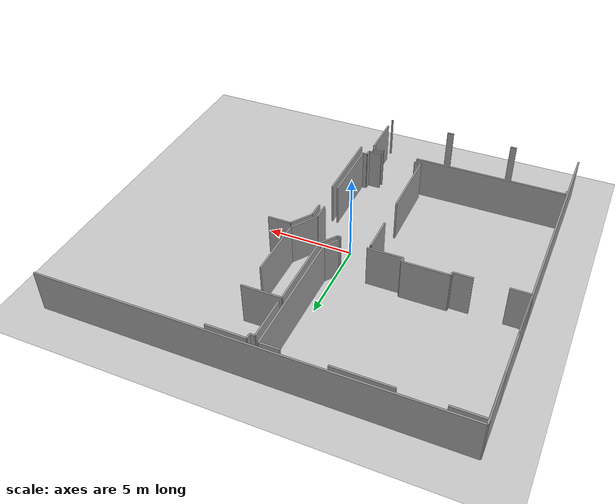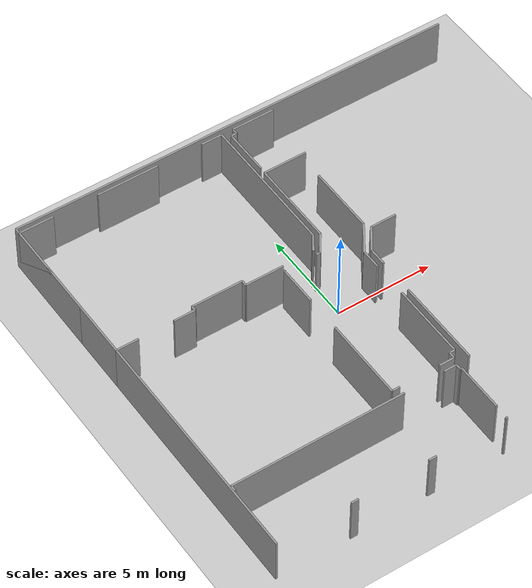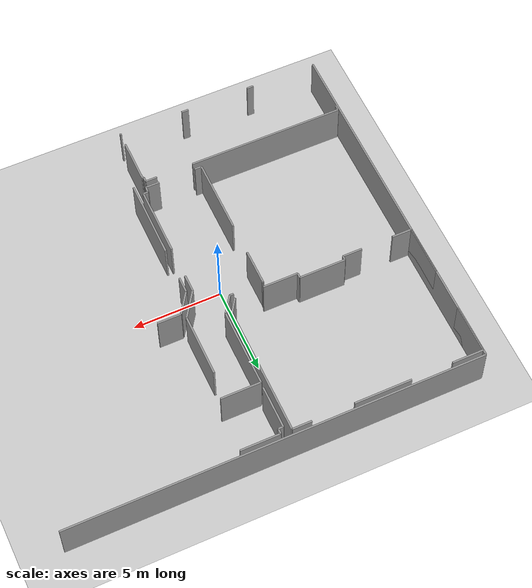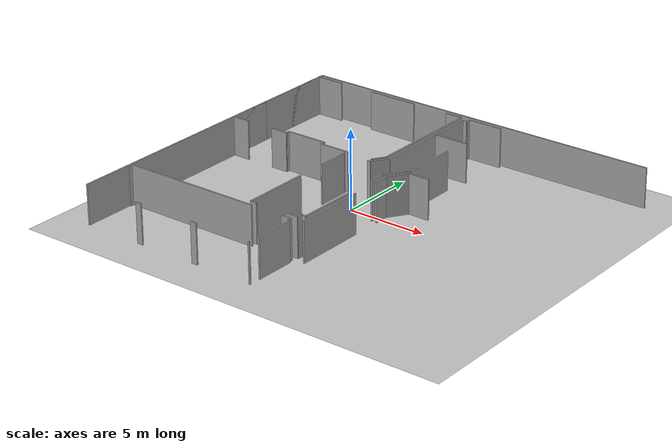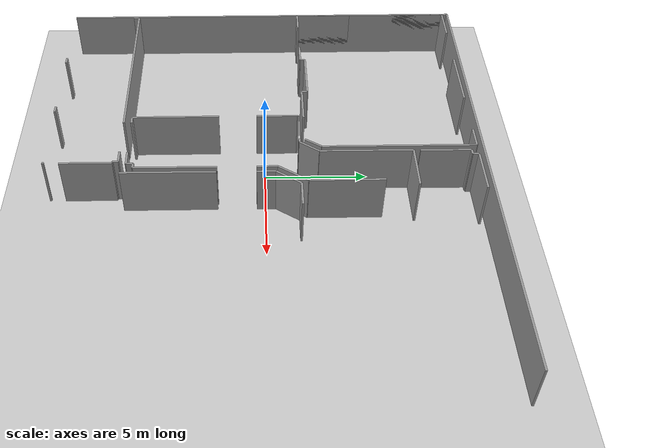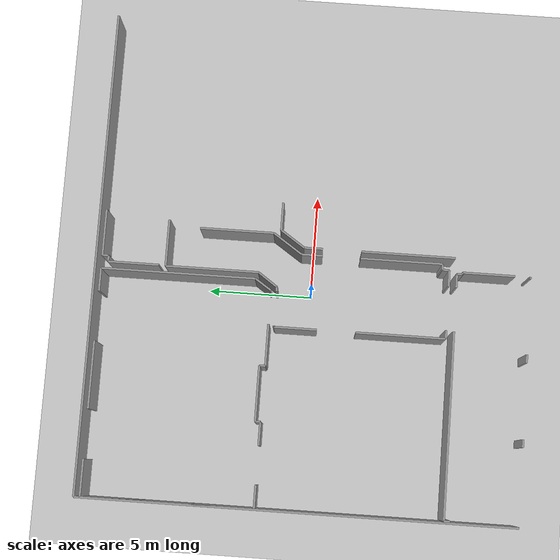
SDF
<sdf version="1.6">
 <world name="default">
  <model name="ground_plane">
   <static>1</static>
   <link name="link">
    <collision name="collision">
     <geometry><plane><normal>0 0 1</normal><size>100 100</size></plane></geometry>
     <surface><friction><ode><mu>100</mu><mu2>50</mu2></ode></friction></surface>
    </collision>
    <visual name="visual">
     <cast_shadows>0</cast_shadows>
     <geometry><plane><normal>0 0 1</normal><size>100 100</size></plane></geometry>
     <material>
      <script><uri>file://media/materials/scripts/gazebo.material</uri><name>Gazebo/Grey</name></script>
     </material>
    </visual>
   </link>
  </model>
  <model name="0510034880_A-40">
   <static>1</static>
   <link name="Wall_0">
    <collision name="Wall_0_Collision">
     <geometry><box><size>1.10557421173 0.1 2.5</size></box></geometry>
     <pose>0.552787105866 0 1.25 0 0 0</pose>
    </collision>
    <visual name="Wall_0_Visual">
     <pose>0.552787105866 0 1.25 0 0 0</pose>
     <geometry><box><size>1.10557421173 0.1 2.5</size></box></geometry>
     <material>
      <script><uri>file://media/materials/scripts/gazebo.material</uri><name>Gazebo/Grey</name></script>
      <ambient>1 1 1 1</ambient>
     </material>
    </visual>
    <pose>4.07023468695 -8.43425654959 0 0 0 3.14159265359</pose>
   </link>
   <link name="Wall_1">
    <collision name="Wall_1_Collision">
     <geometry><box><size>1.13883792825 0.1 2.5</size></box></geometry>
     <pose>0.569418964127 0 1.25 0 0 0</pose>
    </collision>
    <visual name="Wall_1_Visual">
     <pose>0.569418964127 0 1.25 0 0 0</pose>
     <geometry><box><size>1.13883792825 0.1 2.5</size></box></geometry>
     <material>
      <script><uri>file://media/materials/scripts/gazebo.material</uri><name>Gazebo/Grey</name></script>
      <ambient>1 1 1 1</ambient>
     </material>
    </visual>
    <pose>1.13883792825 -8.43425654959 0 0 0 3.14159265359</pose>
   </link>
   <link name="Wall_2">
    <collision name="Wall_2_Collision">
     <geometry><box><size>2.92695313244 0.1 2.5</size></box></geometry>
     <pose>1.46347656622 0 1.25 0 0 0</pose>
    </collision>
    <visual name="Wall_2_Visual">
     <pose>1.46347656622 0 1.25 0 0 0</pose>
     <geometry><box><size>2.92695313244 0.1 2.5</size></box></geometry>
     <material>
      <script><uri>file://media/materials/scripts/gazebo.material</uri><name>Gazebo/Grey</name></script>
      <ambient>1 1 1 1</ambient>
     </material>
    </visual>
    <pose>0.0 -8.43425654959 0 0 0 1.57079632679</pose>
   </link>
   <link name="Wall_3">
    <collision name="Wall_3_Collision">
     <geometry><box><size>2.78831199335 0.1 2.5</size></box></geometry>
     <pose>1.39415599667 0 1.25 0 0 0</pose>
    </collision>
    <visual name="Wall_3_Visual">
     <pose>1.39415599667 0 1.25 0 0 0</pose>
     <geometry><box><size>2.78831199335 0.1 2.5</size></box></geometry>
     <material>
      <script><uri>file://media/materials/scripts/gazebo.material</uri><name>Gazebo/Grey</name></script>
      <ambient>1 1 1 1</ambient>
     </material>
    </visual>
    <pose>0.0 -3.08044867929 0 0 0 1.57079632679</pose>
   </link>
   <link name="Wall_4">
    <collision name="Wall_4_Collision">
     <geometry><box><size>1.77935491243 0.1 2.5</size></box></geometry>
     <pose>0.889677456214 0 1.25 0 0 0</pose>
    </collision>
    <visual name="Wall_4_Visual">
     <pose>0.889677456214 0 1.25 0 0 0</pose>
     <geometry><box><size>1.77935491243 0.1 2.5</size></box></geometry>
     <material>
      <script><uri>file://media/materials/scripts/gazebo.material</uri><name>Gazebo/Grey</name></script>
      <ambient>1 1 1 1</ambient>
     </material>
    </visual>
    <pose>0.0 -0.292136685944 0 0 0 0.0</pose>
   </link>
   <link name="Wall_5">
    <collision name="Wall_5_Collision">
     <geometry><box><size>3.22861187464 0.1 2.5</size></box></geometry>
     <pose>1.61430593732 0 1.25 0 0 0</pose>
    </collision>
    <visual name="Wall_5_Visual">
     <pose>1.61430593732 0 1.25 0 0 0</pose>
     <geometry><box><size>3.22861187464 0.1 2.5</size></box></geometry>
     <material>
      <script><uri>file://media/materials/scripts/gazebo.material</uri><name>Gazebo/Grey</name></script>
      <ambient>1 1 1 1</ambient>
     </material>
    </visual>
    <pose>4.12444692723 -0.292136685944 0 0 0 0.0</pose>
   </link>
   <link name="Wall_6">
    <collision name="Wall_6_Collision">
     <geometry><box><size>1.10328891823 0.1 2.5</size></box></geometry>
     <pose>0.551644459115 0 1.25 0 0 0</pose>
    </collision>
    <visual name="Wall_6_Visual">
     <pose>0.551644459115 0 1.25 0 0 0</pose>
     <geometry><box><size>1.10328891823 0.1 2.5</size></box></geometry>
     <material>
      <script><uri>file://media/materials/scripts/gazebo.material</uri><name>Gazebo/Grey</name></script>
      <ambient>1 1 1 1</ambient>
     </material>
    </visual>
    <pose>9.7352233557 -0.292136685944 0 0 0 0.0</pose>
   </link>
   <link name="Wall_7">
    <collision name="Wall_7_Collision">
     <geometry><box><size>7.40460486641 0.1 2.5</size></box></geometry>
     <pose>3.7023024332 0 1.25 0 0 0</pose>
    </collision>
    <visual name="Wall_7_Visual">
     <pose>3.7023024332 0 1.25 0 0 0</pose>
     <geometry><box><size>7.40460486641 0.1 2.5</size></box></geometry>
     <material>
      <script><uri>file://media/materials/scripts/gazebo.material</uri><name>Gazebo/Grey</name></script>
      <ambient>1 1 1 1</ambient>
     </material>
    </visual>
    <pose>10.8385122739 -0.292136685944 0 0 0 -1.57079632679</pose>
   </link>
   <link name="Wall_8">
    <collision name="Wall_8_Collision">
     <geometry><box><size>0.931093760802 0.1 2.5</size></box></geometry>
     <pose>0.465546880401 0 1.25 0 0 0</pose>
    </collision>
    <visual name="Wall_8_Visual">
     <pose>0.465546880401 0 1.25 0 0 0</pose>
     <geometry><box><size>0.931093760802 0.1 2.5</size></box></geometry>
     <material>
      <script><uri>file://media/materials/scripts/gazebo.material</uri><name>Gazebo/Grey</name></script>
      <ambient>1 1 1 1</ambient>
     </material>
    </visual>
    <pose>10.8385122739 -7.69674155235 0 0 0 -2.15634072487</pose>
   </link>
   <link name="Wall_9">
    <collision name="Wall_9_Collision">
     <geometry><box><size>1.99391858007 0.1 2.5</size></box></geometry>
     <pose>0.996959290035 0 1.25 0 0 0</pose>
    </collision>
    <visual name="Wall_9_Visual">
     <pose>0.996959290035 0 1.25 0 0 0</pose>
     <geometry><box><size>1.99391858007 0.1 2.5</size></box></geometry>
     <material>
      <script><uri>file://media/materials/scripts/gazebo.material</uri><name>Gazebo/Grey</name></script>
      <ambient>1 1 1 1</ambient>
     </material>
    </visual>
    <pose>8.70188981077 -8.47272565686 0 0 0 3.14159265359</pose>
   </link>
   <link name="Wall_10">
    <collision name="Wall_10_Collision">
     <geometry><box><size>0.282741590437 0.1 2.5</size></box></geometry>
     <pose>0.141370795219 0 1.25 0 0 0</pose>
    </collision>
    <visual name="Wall_10_Visual">
     <pose>0.141370795219 0 1.25 0 0 0</pose>
     <geometry><box><size>0.282741590437 0.1 2.5</size></box></geometry>
     <material>
      <script><uri>file://media/materials/scripts/gazebo.material</uri><name>Gazebo/Grey</name></script>
      <ambient>1 1 1 1</ambient>
     </material>
    </visual>
    <pose>6.70797123069 -8.47272565686 0 0 0 1.57079632679</pose>
   </link>
   <link name="Wall_11">
    <collision name="Wall_11_Collision">
     <geometry><box><size>2.64129144475 0.1 2.5</size></box></geometry>
     <pose>1.32064572237 0 1.25 0 0 0</pose>
    </collision>
    <visual name="Wall_11_Visual">
     <pose>1.32064572237 0 1.25 0 0 0</pose>
     <geometry><box><size>2.64129144475 0.1 2.5</size></box></geometry>
     <material>
      <script><uri>file://media/materials/scripts/gazebo.material</uri><name>Gazebo/Grey</name></script>
      <ambient>1 1 1 1</ambient>
     </material>
    </visual>
    <pose>6.70797123069 -8.18998406643 0 0 0 3.14159265359</pose>
   </link>
   <link name="Wall_12">
    <collision name="Wall_12_Collision">
     <geometry><box><size>0.244298349055 0.1 2.5</size></box></geometry>
     <pose>0.122149174528 0 1.25 0 0 0</pose>
    </collision>
    <visual name="Wall_12_Visual">
     <pose>0.122149174528 0 1.25 0 0 0</pose>
     <geometry><box><size>0.244298349055 0.1 2.5</size></box></geometry>
     <material>
      <script><uri>file://media/materials/scripts/gazebo.material</uri><name>Gazebo/Grey</name></script>
      <ambient>1 1 1 1</ambient>
     </material>
    </visual>
    <pose>4.06667978594 -8.18998406643 0 0 0 -1.55624433951</pose>
   </link>
   <link name="Wall_13">
    <collision name="Wall_13_Collision">
     <geometry><box><size>0.775603222264 0.1 2.5</size></box></geometry>
     <pose>0.387801611132 0 1.25 0 0 0</pose>
    </collision>
    <visual name="Wall_13_Visual">
     <pose>0.387801611132 0 1.25 0 0 0</pose>
     <geometry><box><size>0.775603222264 0.1 2.5</size></box></geometry>
     <material>
      <script><uri>file://media/materials/scripts/gazebo.material</uri><name>Gazebo/Grey</name></script>
      <ambient>1 1 1 1</ambient>
     </material>
    </visual>
    <pose>11.8751467984 -16.9111719112 0 0 0 3.14159265359</pose>
   </link>
   <link name="Wall_14">
    <collision name="Wall_14_Collision">
     <geometry><box><size>0.406274400269 0.1 2.5</size></box></geometry>
     <pose>0.203137200135 0 1.25 0 0 0</pose>
    </collision>
    <visual name="Wall_14_Visual">
     <pose>0.203137200135 0 1.25 0 0 0</pose>
     <geometry><box><size>0.406274400269 0.1 2.5</size></box></geometry>
     <material>
      <script><uri>file://media/materials/scripts/gazebo.material</uri><name>Gazebo/Grey</name></script>
      <ambient>1 1 1 1</ambient>
     </material>
    </visual>
    <pose>8.99326473221 -16.9111719112 0 0 0 3.14159265359</pose>
   </link>
   <link name="Wall_15">
    <collision name="Wall_15_Collision">
     <geometry><box><size>4.27172139733 0.1 2.5</size></box></geometry>
     <pose>2.13586069867 0 1.25 0 0 0</pose>
    </collision>
    <visual name="Wall_15_Visual">
     <pose>2.13586069867 0 1.25 0 0 0</pose>
     <geometry><box><size>4.27172139733 0.1 2.5</size></box></geometry>
     <material>
      <script><uri>file://media/materials/scripts/gazebo.material</uri><name>Gazebo/Grey</name></script>
      <ambient>1 1 1 1</ambient>
     </material>
    </visual>
    <pose>8.58699033194 -16.9111719112 0 0 0 1.57079632679</pose>
   </link>
   <link name="Wall_16">
    <collision name="Wall_16_Collision">
     <geometry><box><size>2.04660729136 0.1 2.5</size></box></geometry>
     <pose>1.02330364568 0 1.25 0 0 0</pose>
    </collision>
    <visual name="Wall_16_Visual">
     <pose>1.02330364568 0 1.25 0 0 0</pose>
     <geometry><box><size>2.04660729136 0.1 2.5</size></box></geometry>
     <material>
      <script><uri>file://media/materials/scripts/gazebo.material</uri><name>Gazebo/Grey</name></script>
      <ambient>1 1 1 1</ambient>
     </material>
    </visual>
    <pose>8.58699033194 -10.7844269944 0 0 0 1.57079632679</pose>
   </link>
   <link name="Wall_17">
    <collision name="Wall_17_Collision">
     <geometry><box><size>0.0578941020384 0.1 2.5</size></box></geometry>
     <pose>0.0289470510192 0 1.25 0 0 0</pose>
    </collision>
    <visual name="Wall_17_Visual">
     <pose>0.0289470510192 0 1.25 0 0 0</pose>
     <geometry><box><size>0.0578941020384 0.1 2.5</size></box></geometry>
     <material>
      <script><uri>file://media/materials/scripts/gazebo.material</uri><name>Gazebo/Grey</name></script>
      <ambient>1 1 1 1</ambient>
     </material>
    </visual>
    <pose>8.58699033194 -8.73781970304 0 0 0 0.0</pose>
   </link>
   <link name="Wall_18">
    <collision name="Wall_18_Collision">
     <geometry><box><size>0.215325432143 0.1 2.5</size></box></geometry>
     <pose>0.107662716071 0 1.25 0 0 0</pose>
    </collision>
    <visual name="Wall_18_Visual">
     <pose>0.107662716071 0 1.25 0 0 0</pose>
     <geometry><box><size>0.215325432143 0.1 2.5</size></box></geometry>
     <material>
      <script><uri>file://media/materials/scripts/gazebo.material</uri><name>Gazebo/Grey</name></script>
      <ambient>1 1 1 1</ambient>
     </material>
    </visual>
    <pose>10.2915653626 -8.73781970304 0 0 0 0.0</pose>
   </link>
   <link name="Wall_19">
    <collision name="Wall_19_Collision">
     <geometry><box><size>1.11885012276 0.1 2.5</size></box></geometry>
     <pose>0.559425061379 0 1.25 0 0 0</pose>
    </collision>
    <visual name="Wall_19_Visual">
     <pose>0.559425061379 0 1.25 0 0 0</pose>
     <geometry><box><size>1.11885012276 0.1 2.5</size></box></geometry>
     <material>
      <script><uri>file://media/materials/scripts/gazebo.material</uri><name>Gazebo/Grey</name></script>
      <ambient>1 1 1 1</ambient>
     </material>
    </visual>
    <pose>10.5068907947 -8.73781970304 0 0 0 0.958778193302</pose>
   </link>
   <link name="Wall_20">
    <collision name="Wall_20_Collision">
     <geometry><box><size>4.46216252246 0.1 2.5</size></box></geometry>
     <pose>2.23108126123 0 1.25 0 0 0</pose>
    </collision>
    <visual name="Wall_20_Visual">
     <pose>2.23108126123 0 1.25 0 0 0</pose>
     <geometry><box><size>4.46216252246 0.1 2.5</size></box></geometry>
     <material>
      <script><uri>file://media/materials/scripts/gazebo.material</uri><name>Gazebo/Grey</name></script>
      <ambient>1 1 1 1</ambient>
     </material>
    </visual>
    <pose>11.1496930724 -7.82205181268 0 0 0 1.57079632679</pose>
   </link>
   <link name="Wall_21">
    <collision name="Wall_21_Collision">
     <geometry><box><size>2.258123901 0.1 2.5</size></box></geometry>
     <pose>1.1290619505 0 1.25 0 0 0</pose>
    </collision>
    <visual name="Wall_21_Visual">
     <pose>1.1290619505 0 1.25 0 0 0</pose>
     <geometry><box><size>2.258123901 0.1 2.5</size></box></geometry>
     <material>
      <script><uri>file://media/materials/scripts/gazebo.material</uri><name>Gazebo/Grey</name></script>
      <ambient>1 1 1 1</ambient>
     </material>
    </visual>
    <pose>11.1496930724 -3.35988929023 0 0 0 0.0</pose>
   </link>
   <link name="Wall_23">
    <collision name="Wall_23_Collision">
     <geometry><box><size>3.55807502111 0.1 2.5</size></box></geometry>
     <pose>1.77903751055 0 1.25 0 0 0</pose>
    </collision>
    <visual name="Wall_23_Visual">
     <pose>1.77903751055 0 1.25 0 0 0</pose>
     <geometry><box><size>3.55807502111 0.1 2.5</size></box></geometry>
     <material>
      <script><uri>file://media/materials/scripts/gazebo.material</uri><name>Gazebo/Grey</name></script>
      <ambient>1 1 1 1</ambient>
     </material>
    </visual>
    <pose>13.0975249002 -4.86386633572 0 0 0 -1.57079632679</pose>
   </link>
   <link name="Wall_24">
    <collision name="Wall_24_Collision">
     <geometry><box><size>1.67344017236 0.1 2.5</size></box></geometry>
     <pose>0.836720086182 0 1.25 0 0 0</pose>
    </collision>
    <visual name="Wall_24_Visual">
     <pose>0.836720086182 0 1.25 0 0 0</pose>
     <geometry><box><size>1.67344017236 0.1 2.5</size></box></geometry>
     <material>
      <script><uri>file://media/materials/scripts/gazebo.material</uri><name>Gazebo/Grey</name></script>
      <ambient>1 1 1 1</ambient>
     </material>
    </visual>
    <pose>13.0975249002 -8.42194135683 0 0 0 -2.16506949605</pose>
   </link>
   <link name="Wall_25">
    <collision name="Wall_25_Collision">
     <geometry><box><size>1.00895708092 0.1 2.5</size></box></geometry>
     <pose>0.504478540459 0 1.25 0 0 0</pose>
    </collision>
    <visual name="Wall_25_Visual">
     <pose>0.504478540459 0 1.25 0 0 0</pose>
     <geometry><box><size>1.00895708092 0.1 2.5</size></box></geometry>
     <material>
      <script><uri>file://media/materials/scripts/gazebo.material</uri><name>Gazebo/Grey</name></script>
      <ambient>1 1 1 1</ambient>
     </material>
    </visual>
    <pose>12.1605545646 -9.8084797085 0 0 0 -1.57079632679</pose>
   </link>
   <link name="Wall_26">
    <collision name="Wall_26_Collision">
     <geometry><box><size>3.93184746935 0.1 2.5</size></box></geometry>
     <pose>1.96592373468 0 1.25 0 0 0</pose>
    </collision>
    <visual name="Wall_26_Visual">
     <pose>1.96592373468 0 1.25 0 0 0</pose>
     <geometry><box><size>3.93184746935 0.1 2.5</size></box></geometry>
     <material>
      <script><uri>file://media/materials/scripts/gazebo.material</uri><name>Gazebo/Grey</name></script>
      <ambient>1 1 1 1</ambient>
     </material>
    </visual>
    <pose>12.1605545646 -12.6451637476 0 0 0 -1.57079632679</pose>
   </link>
   <link name="Wall_27">
    <collision name="Wall_27_Collision">
     <geometry><box><size>0.268141104178 0.1 2.5</size></box></geometry>
     <pose>0.134070552089 0 1.25 0 0 0</pose>
    </collision>
    <visual name="Wall_27_Visual">
     <pose>0.134070552089 0 1.25 0 0 0</pose>
     <geometry><box><size>0.268141104178 0.1 2.5</size></box></geometry>
     <material>
      <script><uri>file://media/materials/scripts/gazebo.material</uri><name>Gazebo/Grey</name></script>
      <ambient>1 1 1 1</ambient>
     </material>
    </visual>
    <pose>12.1605545646 -16.577011217 0 0 0 3.14159265359</pose>
   </link>
   <link name="Wall_28">
    <collision name="Wall_28_Collision">
     <geometry><box><size>0.334606496021 0.1 2.5</size></box></geometry>
     <pose>0.167303248011 0 1.25 0 0 0</pose>
    </collision>
    <visual name="Wall_28_Visual">
     <pose>0.167303248011 0 1.25 0 0 0</pose>
     <geometry><box><size>0.334606496021 0.1 2.5</size></box></geometry>
     <material>
      <script><uri>file://media/materials/scripts/gazebo.material</uri><name>Gazebo/Grey</name></script>
      <ambient>1 1 1 1</ambient>
     </material>
    </visual>
    <pose>11.8924134604 -16.577011217 0 0 0 -1.62242214556</pose>
   </link>
   <link name="Wall_31">
    <collision name="Wall_31_Collision">
     <geometry><box><size>4.50913799999 0.1 2.5</size></box></geometry>
     <pose>2.25456899999 0 1.25 0 0 0</pose>
    </collision>
    <visual name="Wall_31_Visual">
     <pose>2.25456899999 0 1.25 0 0 0</pose>
     <geometry><box><size>4.50913799999 0.1 2.5</size></box></geometry>
     <material>
      <script><uri>file://media/materials/scripts/gazebo.material</uri><name>Gazebo/Grey</name></script>
      <ambient>1 1 1 1</ambient>
     </material>
    </visual>
    <pose>12.489002025 -17.1808365444 0 0 0 1.57079632679</pose>
   </link>
   <link name="Wall_32">
    <collision name="Wall_32_Collision">
     <geometry><box><size>0.900151718096 0.1 2.5</size></box></geometry>
     <pose>0.450075859048 0 1.25 0 0 0</pose>
    </collision>
    <visual name="Wall_32_Visual">
     <pose>0.450075859048 0 1.25 0 0 0</pose>
     <geometry><box><size>0.900151718096 0.1 2.5</size></box></geometry>
     <material>
      <script><uri>file://media/materials/scripts/gazebo.material</uri><name>Gazebo/Grey</name></script>
      <ambient>1 1 1 1</ambient>
     </material>
    </visual>
    <pose>12.489002025 -10.8102000267 0 0 0 1.57079632679</pose>
   </link>
   <link name="Wall_33">
    <collision name="Wall_33_Collision">
     <geometry><box><size>1.39421103003 0.1 2.5</size></box></geometry>
     <pose>0.697105515013 0 1.25 0 0 0</pose>
    </collision>
    <visual name="Wall_33_Visual">
     <pose>0.697105515013 0 1.25 0 0 0</pose>
     <geometry><box><size>1.39421103003 0.1 2.5</size></box></geometry>
     <material>
      <script><uri>file://media/materials/scripts/gazebo.material</uri><name>Gazebo/Grey</name></script>
      <ambient>1 1 1 1</ambient>
     </material>
    </visual>
    <pose>12.489002025 -9.91004830857 0 0 0 0.975267282386</pose>
   </link>
   <link name="Wall_34">
    <collision name="Wall_34_Collision">
     <geometry><box><size>1.33575405163 0.1 2.5</size></box></geometry>
     <pose>0.667877025817 0 1.25 0 0 0</pose>
    </collision>
    <visual name="Wall_34_Visual">
     <pose>0.667877025817 0 1.25 0 0 0</pose>
     <geometry><box><size>1.33575405163 0.1 2.5</size></box></geometry>
     <material>
      <script><uri>file://media/materials/scripts/gazebo.material</uri><name>Gazebo/Grey</name></script>
      <ambient>1 1 1 1</ambient>
     </material>
    </visual>
    <pose>13.2710802455 -8.75584812955 0 0 0 0.0</pose>
   </link>
   <link name="Wall_60">
    <collision name="Wall_60_Collision">
     <geometry><box><size>2.43764640161 0.1 2.5</size></box></geometry>
     <pose>1.21882320081 0 1.25 0 0 0</pose>
    </collision>
    <visual name="Wall_60_Visual">
     <pose>1.21882320081 0 1.25 0 0 0</pose>
     <geometry><box><size>2.43764640161 0.1 2.5</size></box></geometry>
     <material>
      <script><uri>file://media/materials/scripts/gazebo.material</uri><name>Gazebo/Grey</name></script>
      <ambient>1 1 1 1</ambient>
     </material>
    </visual>
    <pose>11.1747043402 -3.03867859251 0 0 0 1.57079632679</pose>
   </link>
   <link name="Wall_61">
    <collision name="Wall_61_Collision">
     <geometry><box><size>0.283884237188 0.1 2.5</size></box></geometry>
     <pose>0.141942118594 0 1.25 0 0 0</pose>
    </collision>
    <visual name="Wall_61_Visual">
     <pose>0.141942118594 0 1.25 0 0 0</pose>
     <geometry><box><size>0.283884237188 0.1 2.5</size></box></geometry>
     <material>
      <script><uri>file://media/materials/scripts/gazebo.material</uri><name>Gazebo/Grey</name></script>
      <ambient>1 1 1 1</ambient>
     </material>
    </visual>
    <pose>11.1747043402 -0.601032190898 0 0 0 0.0</pose>
   </link>
   <link name="Wall_62">
    <collision name="Wall_62_Collision">
     <geometry><box><size>0.300516095449 0.1 2.5</size></box></geometry>
     <pose>0.150258047725 0 1.25 0 0 0</pose>
    </collision>
    <visual name="Wall_62_Visual">
     <pose>0.150258047725 0 1.25 0 0 0</pose>
     <geometry><box><size>0.300516095449 0.1 2.5</size></box></geometry>
     <material>
      <script><uri>file://media/materials/scripts/gazebo.material</uri><name>Gazebo/Grey</name></script>
      <ambient>1 1 1 1</ambient>
     </material>
    </visual>
    <pose>11.4585885773 -0.601032190898 0 0 0 1.57079632679</pose>
   </link>
   <link name="Wall_63">
    <collision name="Wall_63_Collision">
     <geometry><box><size>2.23717537723 0.1 2.5</size></box></geometry>
     <pose>1.11858768862 0 1.25 0 0 0</pose>
    </collision>
    <visual name="Wall_63_Visual">
     <pose>1.11858768862 0 1.25 0 0 0</pose>
     <geometry><box><size>2.23717537723 0.1 2.5</size></box></geometry>
     <material>
      <script><uri>file://media/materials/scripts/gazebo.material</uri><name>Gazebo/Grey</name></script>
      <ambient>1 1 1 1</ambient>
     </material>
    </visual>
    <pose>11.4585885773 -0.300516095449 0 0 0 0.0</pose>
   </link>
   <link name="Wall_81">
    <collision name="Wall_81_Collision">
     <geometry><box><size>0.0962362485638 0.1 2.5</size></box></geometry>
     <pose>0.0481181242819 0 1.25 0 0 0</pose>
    </collision>
    <visual name="Wall_81_Visual">
     <pose>0.0481181242819 0 1.25 0 0 0</pose>
     <geometry><box><size>0.0962362485638 0.1 2.5</size></box></geometry>
     <material>
      <script><uri>file://media/materials/scripts/gazebo.material</uri><name>Gazebo/Grey</name></script>
      <ambient>1 1 1 1</ambient>
     </material>
    </visual>
    <pose>11.8341384761 -20.7946473348 0 0 0 3.14159265359</pose>
   </link>
   <link name="Wall_82">
    <collision name="Wall_82_Collision">
     <geometry><box><size>0.396117540262 0.1 2.5</size></box></geometry>
     <pose>0.198058770131 0 1.25 0 0 0</pose>
    </collision>
    <visual name="Wall_82_Visual">
     <pose>0.198058770131 0 1.25 0 0 0</pose>
     <geometry><box><size>0.396117540262 0.1 2.5</size></box></geometry>
     <material>
      <script><uri>file://media/materials/scripts/gazebo.material</uri><name>Gazebo/Grey</name></script>
      <ambient>1 1 1 1</ambient>
     </material>
    </visual>
    <pose>8.10987183312 -20.7946473348 0 0 0 3.14159265359</pose>
   </link>
   <link name="Wall_83">
    <collision name="Wall_83_Collision">
     <geometry><box><size>0.379739603502 0.1 2.5</size></box></geometry>
     <pose>0.189869801751 0 1.25 0 0 0</pose>
    </collision>
    <visual name="Wall_83_Visual">
     <pose>0.189869801751 0 1.25 0 0 0</pose>
     <geometry><box><size>0.379739603502 0.1 2.5</size></box></geometry>
     <material>
      <script><uri>file://media/materials/scripts/gazebo.material</uri><name>Gazebo/Grey</name></script>
      <ambient>1 1 1 1</ambient>
     </material>
    </visual>
    <pose>4.10832291197 -20.7946473348 0 0 0 3.14159265359</pose>
   </link>
   <link name="Wall_84">
    <collision name="Wall_84_Collision">
     <geometry><box><size>0.290359235442 0.1 2.5</size></box></geometry>
     <pose>0.145179617721 0 1.25 0 0 0</pose>
    </collision>
    <visual name="Wall_84_Visual">
     <pose>0.145179617721 0 1.25 0 0 0</pose>
     <geometry><box><size>0.290359235442 0.1 2.5</size></box></geometry>
     <material>
      <script><uri>file://media/materials/scripts/gazebo.material</uri><name>Gazebo/Grey</name></script>
      <ambient>1 1 1 1</ambient>
     </material>
    </visual>
    <pose>0.0817627230542 -17.5749227126 0 0 0 1.57079632679</pose>
   </link>
   <link name="Wall_85">
    <collision name="Wall_85_Collision">
     <geometry><box><size>8.88458633014 0.1 2.5</size></box></geometry>
     <pose>4.44229316507 0 1.25 0 0 0</pose>
    </collision>
    <visual name="Wall_85_Visual">
     <pose>4.44229316507 0 1.25 0 0 0</pose>
     <geometry><box><size>8.88458633014 0.1 2.5</size></box></geometry>
     <material>
      <script><uri>file://media/materials/scripts/gazebo.material</uri><name>Gazebo/Grey</name></script>
      <ambient>1 1 1 1</ambient>
     </material>
    </visual>
    <pose>0.0817627230542 -17.2845634772 0 0 0 0.0</pose>
   </link>
   <link name="Wall_86">
    <collision name="Wall_86_Collision">
     <geometry><box><size>0.652705216182 0.1 2.5</size></box></geometry>
     <pose>0.326352608091 0 1.25 0 0 0</pose>
    </collision>
    <visual name="Wall_86_Visual">
     <pose>0.326352608091 0 1.25 0 0 0</pose>
     <geometry><box><size>0.652705216182 0.1 2.5</size></box></geometry>
     <material>
      <script><uri>file://media/materials/scripts/gazebo.material</uri><name>Gazebo/Grey</name></script>
      <ambient>1 1 1 1</ambient>
     </material>
    </visual>
    <pose>11.0783411308 -17.2845634772 0 0 0 0.0</pose>
   </link>
   <link name="Wall_87">
    <collision name="Wall_87_Collision">
     <geometry><box><size>0.269791593929 0.1 2.5</size></box></geometry>
     <pose>0.134895796964 0 1.25 0 0 0</pose>
    </collision>
    <visual name="Wall_87_Visual">
     <pose>0.134895796964 0 1.25 0 0 0</pose>
     <geometry><box><size>0.269791593929 0.1 2.5</size></box></geometry>
     <material>
      <script><uri>file://media/materials/scripts/gazebo.material</uri><name>Gazebo/Grey</name></script>
      <ambient>1 1 1 1</ambient>
     </material>
    </visual>
    <pose>11.731046347 -17.2845634772 0 0 0 -1.57079632679</pose>
   </link>
   <link name="Wall_88">
    <collision name="Wall_88_Collision">
     <geometry><box><size>0.0810009585537 0.1 2.5</size></box></geometry>
     <pose>0.0405004792768 0 1.25 0 0 0</pose>
    </collision>
    <visual name="Wall_88_Visual">
     <pose>0.0405004792768 0 1.25 0 0 0</pose>
     <geometry><box><size>0.0810009585537 0.1 2.5</size></box></geometry>
     <material>
      <script><uri>file://media/materials/scripts/gazebo.material</uri><name>Gazebo/Grey</name></script>
      <ambient>1 1 1 1</ambient>
     </material>
    </visual>
    <pose>11.731046347 -17.5543550711 0 0 0 0.0</pose>
   </link>
   <link name="Wall_89">
    <collision name="Wall_89_Collision">
     <geometry><box><size>2.50557040291 0.1 2.5</size></box></geometry>
     <pose>1.25278520145 0 1.25 0 0 0</pose>
    </collision>
    <visual name="Wall_89_Visual">
     <pose>1.25278520145 0 1.25 0 0 0</pose>
     <geometry><box><size>2.50557040291 0.1 2.5</size></box></geometry>
     <material>
      <script><uri>file://media/materials/scripts/gazebo.material</uri><name>Gazebo/Grey</name></script>
      <ambient>1 1 1 1</ambient>
     </material>
    </visual>
    <pose>11.8120473056 -17.5543550711 0 0 0 -1.57079632679</pose>
   </link>
   <link name="Wall_92">
    <collision name="Wall_92_Collision">
     <geometry><box><size>20.7946473348 0.1 2.5</size></box></geometry>
     <pose>10.3973236674 0 1.25 0 0 0</pose>
    </collision>
    <visual name="Wall_92_Visual">
     <pose>10.3973236674 0 1.25 0 0 0</pose>
     <geometry><box><size>20.7946473348 0.1 2.5</size></box></geometry>
     <material>
      <script><uri>file://media/materials/scripts/gazebo.material</uri><name>Gazebo/Grey</name></script>
      <ambient>1 1 1 1</ambient>
     </material>
    </visual>
    <pose>0.0 -20.7946473348 0 0 0 1.57079632679</pose>
   </link>
   <link name="Wall_93">
    <collision name="Wall_93_Collision">
     <geometry><box><size>23.4045794743 0.1 2.5</size></box></geometry>
     <pose>11.7022897371 0 1.25 0 0 0</pose>
    </collision>
    <visual name="Wall_93_Visual">
     <pose>11.7022897371 0 1.25 0 0 0</pose>
     <geometry><box><size>23.4045794743 0.1 2.5</size></box></geometry>
     <material>
      <script><uri>file://media/materials/scripts/gazebo.material</uri><name>Gazebo/Grey</name></script>
      <ambient>1 1 1 1</ambient>
     </material>
    </visual>
   </link>
   <pose>-10.4 10.3946473348 0 0 0 0</pose>
  </model>
 </world>
</sdf>
